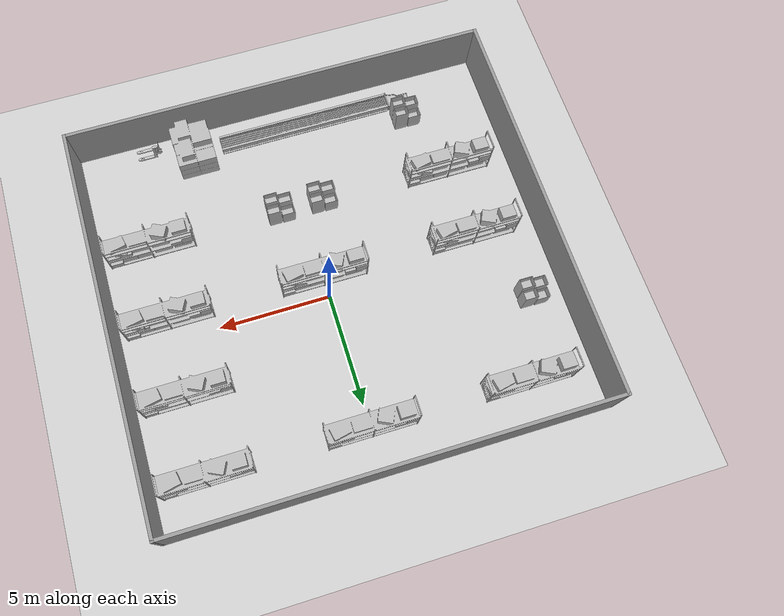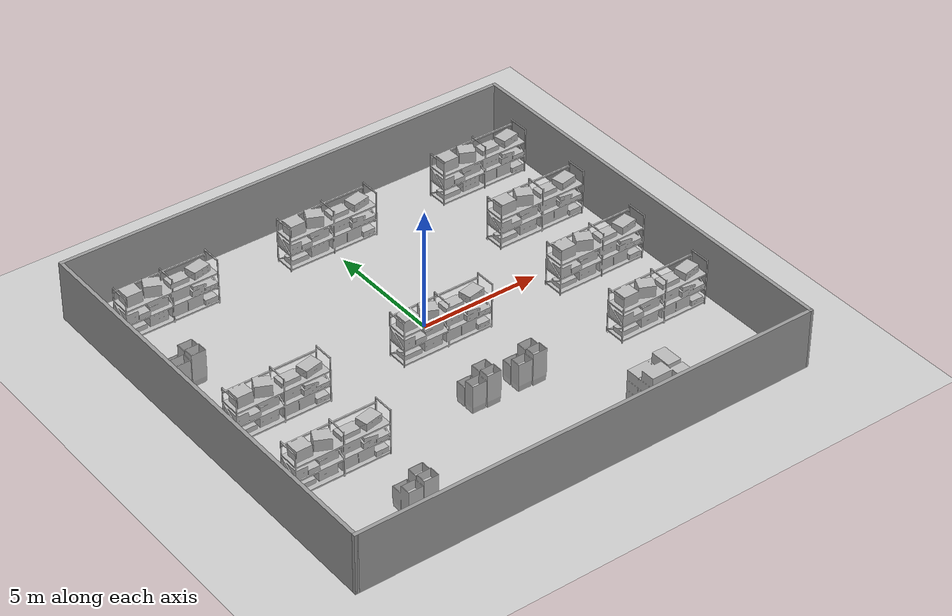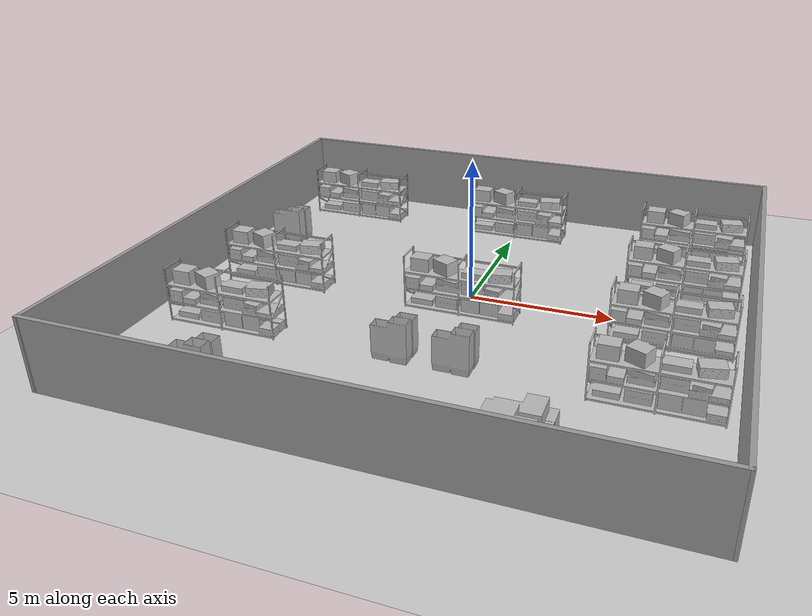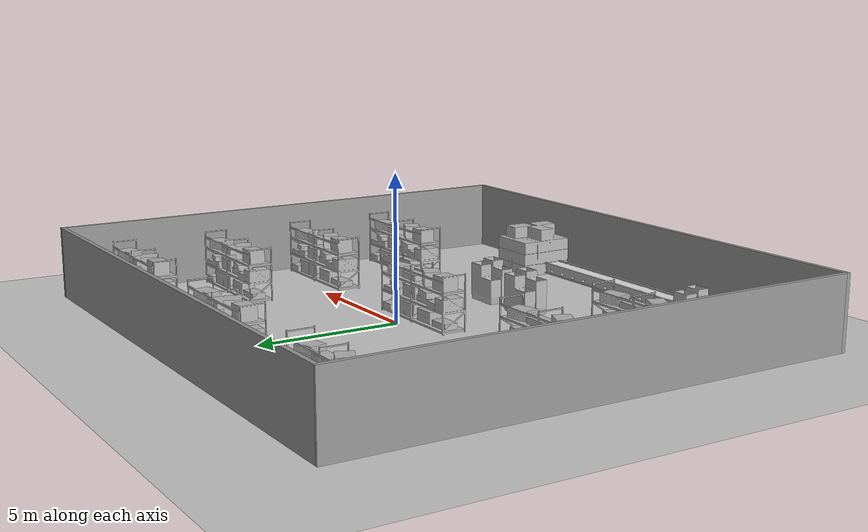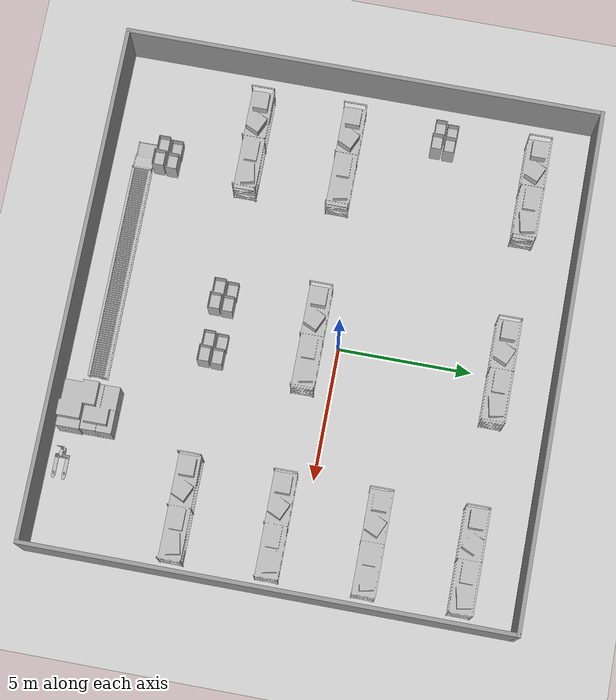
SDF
<sdf version="1.7">
 <world name="default">
  <light name="sun" type="directional">
   <pose>0 0 10 0 -0 0</pose>
   <diffuse>0.8 0.8 0.8 1</diffuse>
   <specular>0.2 0.2 0.2 1</specular>
   <attenuation>
    <range>1000</range>
    <constant>0.9</constant>
    <linear>0.01</linear>
    <quadratic>0.001</quadratic>
   </attenuation>
   <direction>-0.5 0.1 -0.9</direction>
   <spot><inner_angle>0</inner_angle><outer_angle>0</outer_angle><falloff>0</falloff></spot>
  </light>
  <model name="ground_plane">
   <static>1</static>
   <link name="link">
    <collision name="collision">
     <geometry><plane><normal>0 0 1</normal><size>100 100</size></plane></geometry>
     <surface><friction><ode><mu>100</mu><mu2>50</mu2></ode></friction></surface>
    </collision>
    <visual name="visual">
     <cast_shadows>0</cast_shadows>
     <geometry><plane><normal>0 0 1</normal><size>100 100</size></plane></geometry>
     <material>
      <script><uri>file://media/materials/scripts/gazebo.material</uri><name>Gazebo/Grey</name></script>
     </material>
    </visual>
   </link>
  </model>
  <gravity>0 0 -9.8</gravity>
  <magnetic_field>6e-06 2.3e-05 -4.2e-05</magnetic_field>
  <atmosphere type="adiabatic"/>
  <physics type="ode">
   <max_step_size>0.001</max_step_size>
   <real_time_factor>1</real_time_factor>
   <real_time_update_rate>1000</real_time_update_rate>
  </physics>
  <scene><ambient>0.4 0.4 0.4 1</ambient><background>0.7 0.7 0.7 1</background><shadows>1</shadows></scene>
  <spherical_coordinates>
   <surface_model>EARTH_WGS84</surface_model>
   <latitude_deg>0</latitude_deg>
   <longitude_deg>0</longitude_deg>
   <elevation>0</elevation>
   <heading_deg>0</heading_deg>
  </spherical_coordinates>
  <model name="aws_robomaker_warehouse_ShelfD_01">
   <link name="link">
    <inertial>
     <mass>30</mass>
     <inertia><ixx>907.144</ixx><ixy>0</ixy><ixz>0</ixz><iyy>104.95</iyy><iyz>0</iyz><izz>824.248</izz></inertia>
    </inertial>
    <collision name="collision">
     <geometry>
      <mesh>
       <uri>model://sim_env/models/aws_robomaker_warehouse_ShelfD_01/meshes/aws_robomaker_warehouse_ShelfD_01_collision.DAE</uri>
       <scale>1 1 1</scale>
      </mesh>
     </geometry>
     <surface>
      <friction><ode><mu>0.2</mu><mu2>0.2</mu2><fdir1>0 0 0</fdir1><slip1>0</slip1><slip2>0</slip2></ode></friction>
     </surface>
    </collision>
    <visual name="visual">
     <geometry>
      <mesh>
       <uri>model://sim_env/models/aws_robomaker_warehouse_ShelfD_01/meshes/aws_robomaker_warehouse_ShelfD_01_visual.DAE</uri>
      </mesh>
     </geometry>
     <meta><layer>1</layer></meta>
    </visual>
   </link>
   <static>1</static>
   <pose>-7 6 -0.7 0 -0 0</pose>
  </model>
  <model name="aws_robomaker_warehouse_ShelfD_01_clone">
   <link name="link">
    <inertial>
     <mass>30</mass>
     <inertia><ixx>907.144</ixx><ixy>0</ixy><ixz>0</ixz><iyy>104.95</iyy><iyz>0</iyz><izz>824.248</izz></inertia>
    </inertial>
    <collision name="collision">
     <geometry>
      <mesh>
       <uri>model://sim_env/models/aws_robomaker_warehouse_ShelfD_01/meshes/aws_robomaker_warehouse_ShelfD_01_collision.DAE</uri>
       <scale>1 1 1</scale>
      </mesh>
     </geometry>
     <surface>
      <friction><ode><mu>0.2</mu><mu2>0.2</mu2><fdir1>0 0 0</fdir1><slip1>0</slip1><slip2>0</slip2></ode></friction>
     </surface>
    </collision>
    <visual name="visual">
     <geometry>
      <mesh>
       <uri>model://sim_env/models/aws_robomaker_warehouse_ShelfD_01/meshes/aws_robomaker_warehouse_ShelfD_01_visual.DAE</uri>
      </mesh>
     </geometry>
     <meta><layer>1</layer></meta>
    </visual>
   </link>
   <static>1</static>
   <pose>0 6 -0.7 0 -0 0</pose>
  </model>
  <model name="aws_robomaker_warehouse_ShelfD_01_clone_clone">
   <link name="link">
    <inertial>
     <mass>30</mass>
     <inertia><ixx>907.144</ixx><ixy>0</ixy><ixz>0</ixz><iyy>104.95</iyy><iyz>0</iyz><izz>824.248</izz></inertia>
    </inertial>
    <collision name="collision">
     <geometry>
      <mesh>
       <uri>model://sim_env/models/aws_robomaker_warehouse_ShelfD_01/meshes/aws_robomaker_warehouse_ShelfD_01_collision.DAE</uri>
       <scale>1 1 1</scale>
      </mesh>
     </geometry>
     <surface>
      <friction><ode><mu>0.2</mu><mu2>0.2</mu2><fdir1>0 0 0</fdir1><slip1>0</slip1><slip2>0</slip2></ode></friction>
     </surface>
    </collision>
    <visual name="visual">
     <geometry>
      <mesh>
       <uri>model://sim_env/models/aws_robomaker_warehouse_ShelfD_01/meshes/aws_robomaker_warehouse_ShelfD_01_visual.DAE</uri>
      </mesh>
     </geometry>
     <meta><layer>1</layer></meta>
    </visual>
   </link>
   <static>1</static>
   <pose>7 6 -0.7 0 -0 0</pose>
  </model>
  <model name="aws_robomaker_warehouse_ShelfD_01_clone_0">
   <link name="link">
    <inertial>
     <mass>30</mass>
     <inertia><ixx>907.144</ixx><ixy>0</ixy><ixz>0</ixz><iyy>104.95</iyy><iyz>0</iyz><izz>824.248</izz></inertia>
    </inertial>
    <collision name="collision">
     <geometry>
      <mesh>
       <uri>model://sim_env/models/aws_robomaker_warehouse_ShelfD_01/meshes/aws_robomaker_warehouse_ShelfD_01_collision.DAE</uri>
       <scale>1 1 1</scale>
      </mesh>
     </geometry>
     <surface>
      <friction><ode><mu>0.2</mu><mu2>0.2</mu2><fdir1>0 0 0</fdir1><slip1>0</slip1><slip2>0</slip2></ode></friction>
     </surface>
    </collision>
    <visual name="visual">
     <geometry>
      <mesh>
       <uri>model://sim_env/models/aws_robomaker_warehouse_ShelfD_01/meshes/aws_robomaker_warehouse_ShelfD_01_visual.DAE</uri>
      </mesh>
     </geometry>
     <meta><layer>1</layer></meta>
    </visual>
   </link>
   <static>1</static>
   <pose>7 2.5 -0.7 0 -0 0</pose>
  </model>
  <model name="aws_robomaker_warehouse_ShelfD_01_clone_0_clone">
   <link name="link">
    <inertial>
     <mass>30</mass>
     <inertia><ixx>907.144</ixx><ixy>0</ixy><ixz>0</ixz><iyy>104.95</iyy><iyz>0</iyz><izz>824.248</izz></inertia>
    </inertial>
    <collision name="collision">
     <geometry>
      <mesh>
       <uri>model://sim_env/models/aws_robomaker_warehouse_ShelfD_01/meshes/aws_robomaker_warehouse_ShelfD_01_collision.DAE</uri>
       <scale>1 1 1</scale>
      </mesh>
     </geometry>
     <surface>
      <friction><ode><mu>0.2</mu><mu2>0.2</mu2><fdir1>0 0 0</fdir1><slip1>0</slip1><slip2>0</slip2></ode></friction>
     </surface>
    </collision>
    <visual name="visual">
     <geometry>
      <mesh>
       <uri>model://sim_env/models/aws_robomaker_warehouse_ShelfD_01/meshes/aws_robomaker_warehouse_ShelfD_01_visual.DAE</uri>
      </mesh>
     </geometry>
     <meta><layer>1</layer></meta>
    </visual>
   </link>
   <static>1</static>
   <pose>7 -1 -0.7 0 -0 0</pose>
  </model>
  <model name="aws_robomaker_warehouse_ShelfD_01_clone_0_clone_0">
   <link name="link">
    <inertial>
     <mass>30</mass>
     <inertia><ixx>907.144</ixx><ixy>0</ixy><ixz>0</ixz><iyy>104.95</iyy><iyz>0</iyz><izz>824.248</izz></inertia>
    </inertial>
    <collision name="collision">
     <geometry>
      <mesh>
       <uri>model://sim_env/models/aws_robomaker_warehouse_ShelfD_01/meshes/aws_robomaker_warehouse_ShelfD_01_collision.DAE</uri>
       <scale>1 1 1</scale>
      </mesh>
     </geometry>
     <surface>
      <friction><ode><mu>0.2</mu><mu2>0.2</mu2><fdir1>0 0 0</fdir1><slip1>0</slip1><slip2>0</slip2></ode></friction>
     </surface>
    </collision>
    <visual name="visual">
     <geometry>
      <mesh>
       <uri>model://sim_env/models/aws_robomaker_warehouse_ShelfD_01/meshes/aws_robomaker_warehouse_ShelfD_01_visual.DAE</uri>
      </mesh>
     </geometry>
     <meta><layer>1</layer></meta>
    </visual>
   </link>
   <static>1</static>
   <pose>7 -4.5 -0.7 0 -0 0</pose>
  </model>
  <model name="aws_robomaker_warehouse_ShelfD_01_clone_0_clone_0_clone">
   <link name="link">
    <inertial>
     <mass>30</mass>
     <inertia><ixx>907.144</ixx><ixy>0</ixy><ixz>0</ixz><iyy>104.95</iyy><iyz>0</iyz><izz>824.248</izz></inertia>
    </inertial>
    <collision name="collision">
     <geometry>
      <mesh>
       <uri>model://sim_env/models/aws_robomaker_warehouse_ShelfD_01/meshes/aws_robomaker_warehouse_ShelfD_01_collision.DAE</uri>
       <scale>1 1 1</scale>
      </mesh>
     </geometry>
     <surface>
      <friction><ode><mu>0.2</mu><mu2>0.2</mu2><fdir1>0 0 0</fdir1><slip1>0</slip1><slip2>0</slip2></ode></friction>
     </surface>
    </collision>
    <visual name="visual">
     <geometry>
      <mesh>
       <uri>model://sim_env/models/aws_robomaker_warehouse_ShelfD_01/meshes/aws_robomaker_warehouse_ShelfD_01_visual.DAE</uri>
      </mesh>
     </geometry>
     <meta><layer>1</layer></meta>
    </visual>
   </link>
   <static>1</static>
   <pose>0 -1 -0.7 0 -0 0</pose>
  </model>
  <model name="aws_robomaker_warehouse_ShelfD_01_clone_0_clone_0_clone_0">
   <link name="link">
    <inertial>
     <mass>30</mass>
     <inertia><ixx>907.144</ixx><ixy>0</ixy><ixz>0</ixz><iyy>104.95</iyy><iyz>0</iyz><izz>824.248</izz></inertia>
    </inertial>
    <collision name="collision">
     <geometry>
      <mesh>
       <uri>model://sim_env/models/aws_robomaker_warehouse_ShelfD_01/meshes/aws_robomaker_warehouse_ShelfD_01_collision.DAE</uri>
       <scale>1 1 1</scale>
      </mesh>
     </geometry>
     <surface>
      <friction><ode><mu>0.2</mu><mu2>0.2</mu2><fdir1>0 0 0</fdir1><slip1>0</slip1><slip2>0</slip2></ode></friction>
     </surface>
    </collision>
    <visual name="visual">
     <geometry>
      <mesh>
       <uri>model://sim_env/models/aws_robomaker_warehouse_ShelfD_01/meshes/aws_robomaker_warehouse_ShelfD_01_visual.DAE</uri>
      </mesh>
     </geometry>
     <meta><layer>1</layer></meta>
    </visual>
   </link>
   <static>1</static>
   <pose>-7 -1 -0.7 0 -0 0</pose>
  </model>
  <model name="aws_robomaker_warehouse_ShelfD_01_clone_0_clone_0_clone_1">
   <link name="link">
    <inertial>
     <mass>30</mass>
     <inertia><ixx>907.144</ixx><ixy>0</ixy><ixz>0</ixz><iyy>104.95</iyy><iyz>0</iyz><izz>824.248</izz></inertia>
    </inertial>
    <collision name="collision">
     <geometry>
      <mesh>
       <uri>model://sim_env/models/aws_robomaker_warehouse_ShelfD_01/meshes/aws_robomaker_warehouse_ShelfD_01_collision.DAE</uri>
       <scale>1 1 1</scale>
      </mesh>
     </geometry>
     <surface>
      <friction><ode><mu>0.2</mu><mu2>0.2</mu2><fdir1>0 0 0</fdir1><slip1>0</slip1><slip2>0</slip2></ode></friction>
     </surface>
    </collision>
    <visual name="visual">
     <geometry>
      <mesh>
       <uri>model://sim_env/models/aws_robomaker_warehouse_ShelfD_01/meshes/aws_robomaker_warehouse_ShelfD_01_visual.DAE</uri>
      </mesh>
     </geometry>
     <meta><layer>1</layer></meta>
    </visual>
   </link>
   <static>1</static>
   <pose>-7 -4.5 -0.7 0 -0 0</pose>
  </model>
  <model name="aws_robomaker_warehouse_Bucket_01">
   <link name="body">
    <inertial>
     <mass>2</mass>
     <inertia><ixx>0.57</ixx><ixy>0</ixy><ixz>0</ixz><iyy>0.474</iyy><iyz>0</iyz><izz>0.391</izz></inertia>
    </inertial>
    <visual name="visual">
     <geometry>
      <mesh>
       <uri>model://sim_env/models/aws_robomaker_warehouse_Bucket_01/meshes/aws_robomaker_warehouse_Bucket_01_visual.DAE</uri>
      </mesh>
     </geometry>
     <meta><layer>1</layer></meta>
    </visual>
    <collision name="collision_0">
     <geometry>
      <mesh>
       <uri>model://sim_env/models/aws_robomaker_warehouse_Bucket_01/meshes/aws_robomaker_warehouse_Bucket_01_collision.DAE</uri>
       <scale>1 1 1</scale>
      </mesh>
     </geometry>
     <surface>
      <friction>
       <ode><mu>0.4</mu><mu2>0.4</mu2><fdir1>0 0 0</fdir1><slip1>0</slip1><slip2>0</slip2></ode>
       <torsional>
        <coefficient>1</coefficient>
        <patch_radius>0</patch_radius>
        <surface_radius>0</surface_radius>
        <use_patch_radius>1</use_patch_radius>
        <ode><slip>0</slip></ode>
       </torsional>
      </friction>
     </surface>
    </collision>
   </link>
   <static>1</static>
   <pose>-8.5 2.5 0 0 -0 1.57</pose>
  </model>
  <model name="aws_robomaker_warehouse_Bucket_01_clone">
   <link name="body">
    <inertial>
     <mass>2</mass>
     <inertia><ixx>0.57</ixx><ixy>0</ixy><ixz>0</ixz><iyy>0.474</iyy><iyz>0</iyz><izz>0.391</izz></inertia>
    </inertial>
    <visual name="visual">
     <geometry>
      <mesh>
       <uri>model://sim_env/models/aws_robomaker_warehouse_Bucket_01/meshes/aws_robomaker_warehouse_Bucket_01_visual.DAE</uri>
      </mesh>
     </geometry>
     <meta><layer>1</layer></meta>
    </visual>
    <collision name="collision_0">
     <geometry>
      <mesh>
       <uri>model://sim_env/models/aws_robomaker_warehouse_Bucket_01/meshes/aws_robomaker_warehouse_Bucket_01_collision.DAE</uri>
       <scale>1 1 1</scale>
      </mesh>
     </geometry>
     <surface>
      <friction>
       <ode><mu>0.4</mu><mu2>0.4</mu2><fdir1>0 0 0</fdir1><slip1>0</slip1><slip2>0</slip2></ode>
       <torsional>
        <coefficient>1</coefficient>
        <patch_radius>0</patch_radius>
        <surface_radius>0</surface_radius>
        <use_patch_radius>1</use_patch_radius>
        <ode><slip>0</slip></ode>
       </torsional>
      </friction>
     </surface>
    </collision>
   </link>
   <static>1</static>
   <pose>-1 -4.5 0 0 -0 1.57</pose>
  </model>
  <model name="aws_robomaker_warehouse_Bucket_01_clone_0">
   <link name="body">
    <inertial>
     <mass>2</mass>
     <inertia><ixx>0.57</ixx><ixy>0</ixy><ixz>0</ixz><iyy>0.474</iyy><iyz>0</iyz><izz>0.391</izz></inertia>
    </inertial>
    <visual name="visual">
     <geometry>
      <mesh>
       <uri>model://sim_env/models/aws_robomaker_warehouse_Bucket_01/meshes/aws_robomaker_warehouse_Bucket_01_visual.DAE</uri>
      </mesh>
     </geometry>
     <meta><layer>1</layer></meta>
    </visual>
    <collision name="collision_0">
     <geometry>
      <mesh>
       <uri>model://sim_env/models/aws_robomaker_warehouse_Bucket_01/meshes/aws_robomaker_warehouse_Bucket_01_collision.DAE</uri>
       <scale>1 1 1</scale>
      </mesh>
     </geometry>
     <surface>
      <friction>
       <ode><mu>0.4</mu><mu2>0.4</mu2><fdir1>0 0 0</fdir1><slip1>0</slip1><slip2>0</slip2></ode>
       <torsional>
        <coefficient>1</coefficient>
        <patch_radius>0</patch_radius>
        <surface_radius>0</surface_radius>
        <use_patch_radius>1</use_patch_radius>
        <ode><slip>0</slip></ode>
       </torsional>
      </friction>
     </surface>
    </collision>
   </link>
   <static>1</static>
   <pose>1 -4.5 0 0 -0 1.57</pose>
  </model>
  <model name="shipping_container_conveyor_ariac">
   <static>1</static>
   <link name="link">
    <collision name="collision_belt_side_front">
     <pose>0.83 1.6275 0.41 0 -0 0</pose>
     <geometry><box><size>0.105 7.98 0.4</size></box></geometry>
    </collision>
    <collision name="collision_belt_side_back">
     <pose>0.185 1.6275 0.41 0 -0 0</pose>
     <geometry><box><size>0.105 7.98 0.4</size></box></geometry>
    </collision>
    <visual name="visual">
     <geometry>
      <mesh>
       <scale>0.9 0.7 1.3</scale>
       <uri>model://sim_env/models/shipping_container_conveyor_ariac/meshes/ShippingContainer_Textured.obj</uri>
      </mesh>
     </geometry>
    </visual>
   </link>
   <pose>-3 -8 0 0 0 -1.57</pose>
  </model>
  <model name="aws_robomaker_warehouse_ClutteringC_01">
   <link name="link">
    <inertial>
     <mass>1</mass>
     <inertia><ixx>1.558</ixx><ixy>0</ixy><ixz>0</ixz><iyy>1.821</iyy><iyz>0</iyz><izz>1.892</izz></inertia>
    </inertial>
    <collision name="collision">
     <geometry>
      <mesh>
       <uri>model://sim_env/models/aws_robomaker_warehouse_ClutteringC_01/meshes/aws_robomaker_warehouse_ClutteringC_01_collision.DAE</uri>
       <scale>1 1 1</scale>
      </mesh>
     </geometry>
     <surface>
      <friction>
       <ode><mu>0.6</mu><mu2>0.6</mu2><fdir1>0 0 0</fdir1><slip1>0</slip1><slip2>0</slip2></ode>
       <torsional>
        <coefficient>1</coefficient>
        <patch_radius>0</patch_radius>
        <surface_radius>0</surface_radius>
        <use_patch_radius>1</use_patch_radius>
        <ode><slip>0</slip></ode>
       </torsional>
      </friction>
     </surface>
    </collision>
    <visual name="visual">
     <geometry>
      <mesh>
       <uri>model://sim_env/models/aws_robomaker_warehouse_ClutteringC_01/meshes/aws_robomaker_warehouse_ClutteringC_01_visual.DAE</uri>
      </mesh>
     </geometry>
     <meta><layer>1</layer></meta>
    </visual>
   </link>
   <static>1</static>
   <pose>4 -8.5 0 0 -0 0</pose>
  </model>
  <model name="aws_robomaker_warehouse_PalletJackB_01">
   <link name="link">
    <inertial>
     <mass>2</mass>
     <inertia><ixx>0.277</ixx><ixy>0</ixy><ixz>0</ixz><iyy>0.452</iyy><iyz>0</iyz><izz>0.268</izz></inertia>
    </inertial>
    <collision name="collision">
     <geometry>
      <mesh>
       <uri>model://sim_env/models/aws_robomaker_warehouse_PalletJackB_01/meshes/aws_robomaker_warehouse_PalletJackB_01_collision.DAE</uri>
       <scale>1 1 1</scale>
      </mesh>
     </geometry>
     <surface>
      <friction><ode><mu>0.2</mu><mu2>0.2</mu2><fdir1>0 0 0</fdir1><slip1>0</slip1><slip2>0</slip2></ode></friction>
     </surface>
    </collision>
    <visual name="visual">
     <geometry>
      <mesh>
       <uri>model://sim_env/models/aws_robomaker_warehouse_PalletJackB_01/meshes/aws_robomaker_warehouse_PalletJackB_01_visual.DAE</uri>
      </mesh>
     </geometry>
     <meta><layer>1</layer></meta>
    </visual>
   </link>
   <static>1</static>
   <pose>6 -9.2 0 0 -0 0</pose>
  </model>
  <model name="aws_robomaker_warehouse_Bucket_01_0">
   <link name="body">
    <inertial>
     <mass>2</mass>
     <inertia><ixx>0.57</ixx><ixy>0</ixy><ixz>0</ixz><iyy>0.474</iyy><iyz>0</iyz><izz>0.391</izz></inertia>
    </inertial>
    <visual name="visual">
     <geometry>
      <mesh>
       <uri>model://sim_env/models/aws_robomaker_warehouse_Bucket_01/meshes/aws_robomaker_warehouse_Bucket_01_visual.DAE</uri>
      </mesh>
     </geometry>
     <meta><layer>1</layer></meta>
    </visual>
    <collision name="collision_0">
     <geometry>
      <mesh>
       <uri>model://sim_env/models/aws_robomaker_warehouse_Bucket_01/meshes/aws_robomaker_warehouse_Bucket_01_collision.DAE</uri>
       <scale>1 1 1</scale>
      </mesh>
     </geometry>
     <surface>
      <friction>
       <ode><mu>0.4</mu><mu2>0.4</mu2><fdir1>0 0 0</fdir1><slip1>0</slip1><slip2>0</slip2></ode>
       <torsional>
        <coefficient>1</coefficient>
        <patch_radius>0</patch_radius>
        <surface_radius>0</surface_radius>
        <use_patch_radius>1</use_patch_radius>
        <ode><slip>0</slip></ode>
       </torsional>
      </friction>
     </surface>
    </collision>
   </link>
   <static>1</static>
   <pose>-6 -7.6 0 0 -0 1.57</pose>
  </model>
  <plugin name="collision_map_creator" filename="libcollision_map_creator.so"/>
  <model name="Untitled">
   <pose>-0.325001 -0.875178 0 0 -0 0</pose>
   <link name="Wall_10">
    <collision name="Wall_10_Collision">
     <geometry><box><size>18 0.15 2.5</size></box></geometry>
     <pose>0 0 1.25 0 -0 0</pose>
    </collision>
    <visual name="Wall_10_Visual">
     <pose>0 0 1.25 0 -0 0</pose>
     <geometry><box><size>18 0.15 2.5</size></box></geometry>
     <material>
      <script><uri>file://media/materials/scripts/gazebo.material</uri><name>Gazebo/Grey</name></script>
      <ambient>1 1 1 1</ambient>
     </material>
     <meta><layer>0</layer></meta>
    </visual>
    <pose>9.675 0.001322 0 0 -0 1.5708</pose>
   </link>
   <link name="Wall_12">
    <collision name="Wall_12_Collision">
     <geometry><box><size>18 0.15 2.5</size></box></geometry>
     <pose>0 0 1.25 0 -0 0</pose>
    </collision>
    <visual name="Wall_12_Visual">
     <pose>0 0 1.25 0 -0 0</pose>
     <geometry><box><size>18 0.15 2.5</size></box></geometry>
     <material>
      <script><uri>file://media/materials/scripts/gazebo.material</uri><name>Gazebo/Grey</name></script>
      <ambient>1 1 1 1</ambient>
     </material>
     <meta><layer>0</layer></meta>
    </visual>
    <pose>-9.675 -0.001322 0 0 -0 1.5708</pose>
   </link>
   <link name="Wall_14">
    <collision name="Wall_14_Collision">
     <geometry><box><size>19.5 0.15 2.5</size></box></geometry>
     <pose>0 0 1.25 0 -0 0</pose>
    </collision>
    <visual name="Wall_14_Visual">
     <pose>0 0 1.25 0 -0 0</pose>
     <geometry><box><size>19.5 0.15 2.5</size></box></geometry>
     <material>
      <script><uri>file://media/materials/scripts/gazebo.material</uri><name>Gazebo/Grey</name></script>
      <ambient>1 1 1 1</ambient>
     </material>
     <meta><layer>0</layer></meta>
    </visual>
    <pose>-0 8.925 0 0 -0 0.000137</pose>
   </link>
   <link name="Wall_8">
    <collision name="Wall_8_Collision">
     <geometry><box><size>19.5 0.15 2.5</size></box></geometry>
     <pose>0 0 1.25 0 -0 0</pose>
    </collision>
    <visual name="Wall_8_Visual">
     <pose>0 0 1.25 0 -0 0</pose>
     <geometry><box><size>19.5 0.15 2.5</size></box></geometry>
     <material>
      <script><uri>file://media/materials/scripts/gazebo.material</uri><name>Gazebo/Grey</name></script>
      <ambient>1 1 1 1</ambient>
     </material>
     <meta><layer>0</layer></meta>
    </visual>
    <pose>-0 -8.925 0 0 -0 0.000137</pose>
   </link>
   <static>1</static>
  </model>
  <plugin filename="libcollision_map_creator.so" name="collision_map_creator"/>
 </world>
</sdf>
